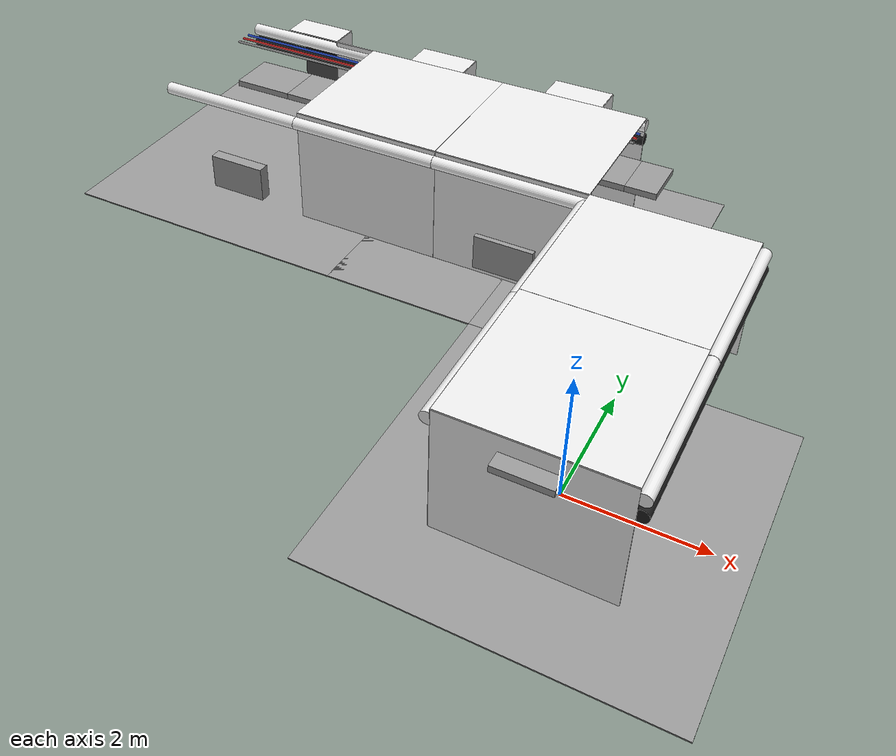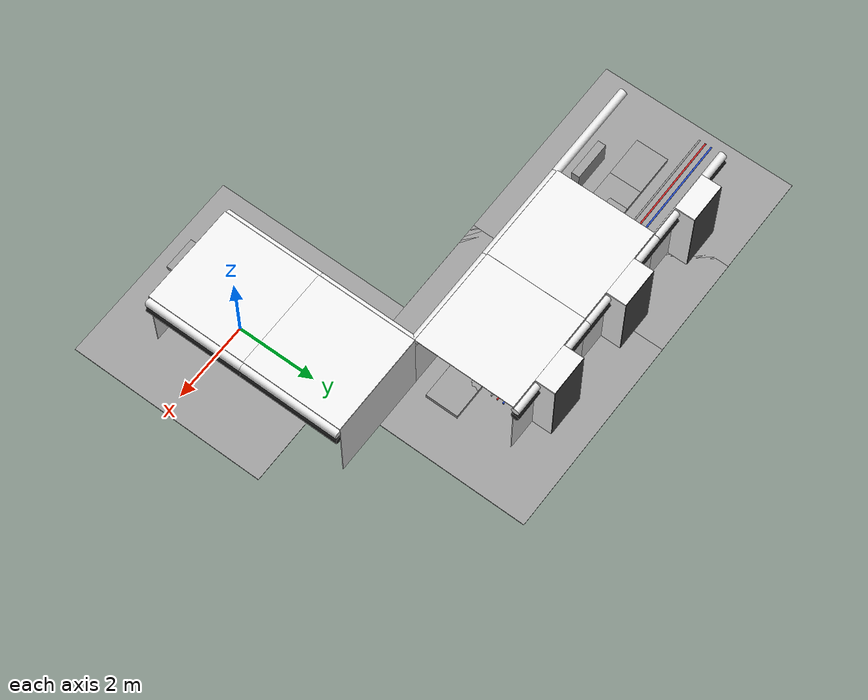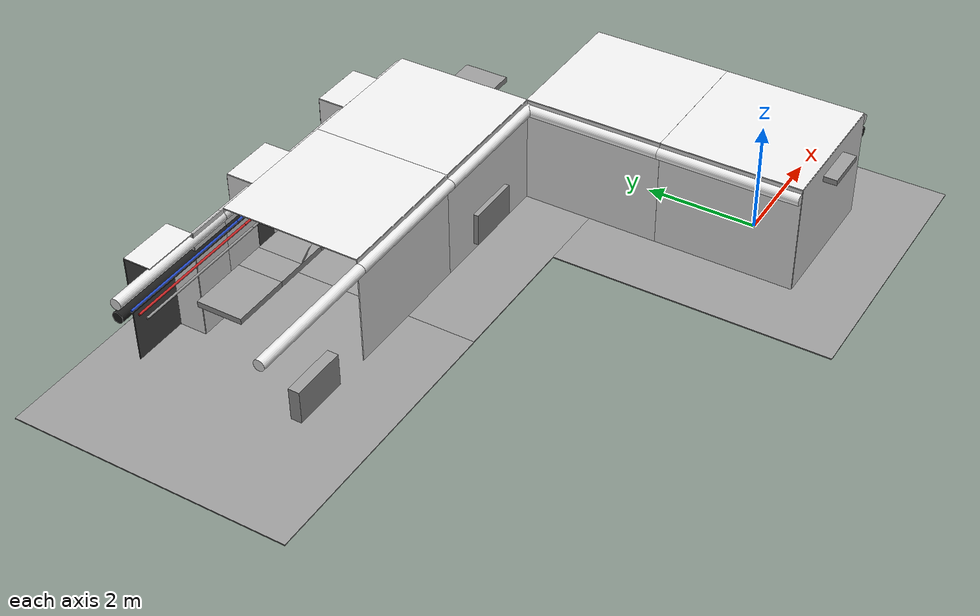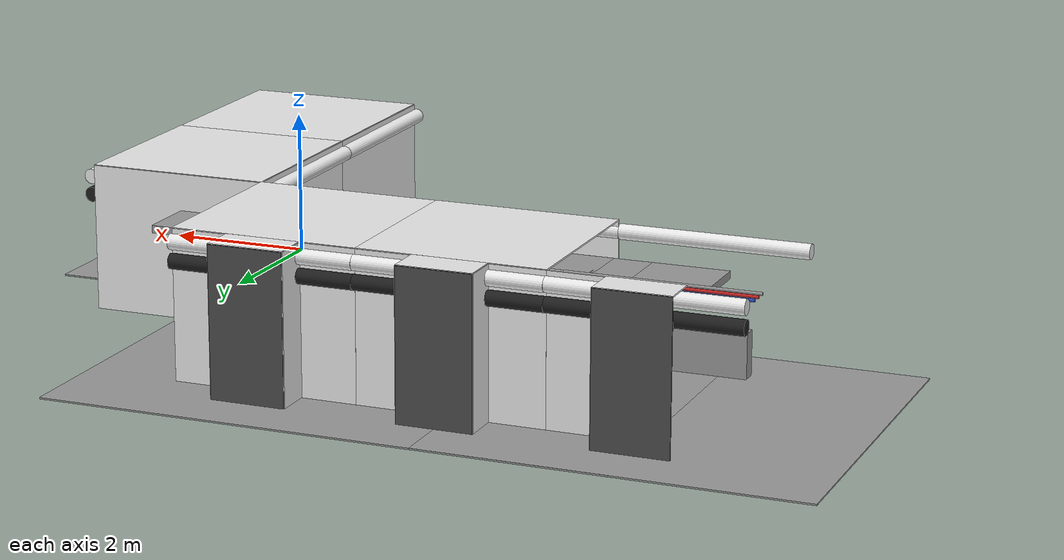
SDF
<sdf version="1.6">
 <world name="default">
  <model name="wall_back_0_0_0_0">
   <static>1</static>
   <pose>0.0 -1.25 1.0 0.0 0.0 0.0</pose>
   <link name="link">
    <collision name="collision"><geometry><box><size>2.5 0.02 2.0</size></box></geometry></collision>
    <visual name="visual">
     <material>
      <script><name>Gazebo/White</name><uri>file://media/materials/scripts/gazebo.material</uri></script>
     </material>
     <geometry><box><size>2.5 0.02 2.0</size></box></geometry>
    </visual>
   </link>
  </model>
  <model name="wall_left_0_0_0_0">
   <static>1</static>
   <pose>-1.25 0.0 1.0 0.0 0.0 1.57</pose>
   <link name="link">
    <collision name="collision"><geometry><box><size>2.5 0.02 2.0</size></box></geometry></collision>
    <visual name="visual">
     <material>
      <script><name>Gazebo/White</name><uri>file://media/materials/scripts/gazebo.material</uri></script>
     </material>
     <geometry><box><size>2.5 0.02 2.0</size></box></geometry>
    </visual>
   </link>
  </model>
  <model name="wall_top_0_0_0_0">
   <static>1</static>
   <pose>0.0 0.0 2.0 1.57 0.0 0.0</pose>
   <link name="link">
    <collision name="collision"><geometry><box><size>2.5 0.02 2.5</size></box></geometry></collision>
    <visual name="visual">
     <material>
      <script><name>Gazebo/White</name><uri>file://media/materials/scripts/gazebo.material</uri></script>
     </material>
     <geometry><box><size>2.5 0.02 2.5</size></box></geometry>
    </visual>
   </link>
  </model>
  <model name="ceiling_1_0_0_0_0">
   <pose>0.0 0.0 1.7 0.0 0.0 0.0</pose>
   <link name="link_1">
    <visual name="visual">
     <geometry><box><size>0.8 1 0.1</size></box></geometry>
     <material>
      <script><uri>file://media/materials/scripts/gazebo.material</uri><name>Gazebo/Grey</name></script>
     </material>
    </visual>
    <collision name="collision"><geometry><box><size>0.8 1 0.1</size></box></geometry></collision>
   </link>
   <static>1</static>
  </model>
  <model name="ceiling_1_0_0_1_0">
   <pose>0.0 -1.0 1.7 0.0 0.0 0.0</pose>
   <link name="link_1">
    <visual name="visual">
     <geometry><box><size>0.8 1 0.1</size></box></geometry>
     <material>
      <script><uri>file://media/materials/scripts/gazebo.material</uri><name>Gazebo/Grey</name></script>
     </material>
    </visual>
    <collision name="collision"><geometry><box><size>0.8 1 0.1</size></box></geometry></collision>
   </link>
   <static>1</static>
  </model>
  <model name="ceiling_1_0_0_2_0">
   <pose>0.0 1.0 1.7 0.0 0.0 0.0</pose>
   <link name="link_1">
    <visual name="visual">
     <geometry><box><size>0.8 1 0.1</size></box></geometry>
     <material>
      <script><uri>file://media/materials/scripts/gazebo.material</uri><name>Gazebo/Grey</name></script>
     </material>
    </visual>
    <collision name="collision"><geometry><box><size>0.8 1 0.1</size></box></geometry></collision>
   </link>
   <static>1</static>
  </model>
  <model name="white_pipe_left_0_0_0_0">
   <static>1</static>
   <pose>0.0 0.0 1.84 0.0 0.0 0.0</pose>
   <link name="link_0">
    <visual name="visual">
     <pose>-1.3 0 0 1.57 0 0</pose>
     <geometry><cylinder><radius>0.1</radius><length>2.5</length></cylinder></geometry>
     <material>
      <script><uri>file://media/materials/scripts/gazebo.material</uri><name>Gazebo/White</name></script>
     </material>
    </visual>
    <collision name="collision">
     <pose>-1.3 0 0 1.57 0 0</pose>
     <geometry><cylinder><radius>0.1</radius><length>2.5</length></cylinder></geometry>
    </collision>
   </link>
  </model>
  <model name="white_pipe_right_0_0_0_0">
   <static>1</static>
   <pose>0.0 0.0 1.84 0.0 0.0 0.0</pose>
   <link name="link_0">
    <visual name="visual">
     <pose>1.3 0 0 1.57 0 0</pose>
     <geometry><cylinder><radius>0.1</radius><length>2.5</length></cylinder></geometry>
     <material>
      <script><uri>file://media/materials/scripts/gazebo.material</uri><name>Gazebo/White</name></script>
     </material>
    </visual>
    <collision name="collision">
     <pose>1.3 0 0 1.57 0 0</pose>
     <geometry><cylinder><radius>0.1</radius><length>2.5</length></cylinder></geometry>
    </collision>
   </link>
  </model>
  <model name="black_pipe_right_0_0_0_0">
   <static>1</static>
   <pose>0.0 0.0 1.84 0.0 0.0 0.0</pose>
   <link name="link_0">
    <visual name="visual">
     <pose>1.3 0 -0.25 1.57 0 0</pose>
     <geometry><cylinder><radius>0.1</radius><length>2.5</length></cylinder></geometry>
     <material>
      <script><uri>file://media/materials/scripts/gazebo.material</uri><name>Gazebo/Black</name></script>
     </material>
    </visual>
    <collision name="collision">
     <pose>1.3 0 -0.25 1.57 0 0</pose>
     <geometry><cylinder><radius>0.1</radius><length>2.5</length></cylinder></geometry>
    </collision>
   </link>
  </model>
  <model name="grey_pipe_right_0_0_0_0">
   <static>1</static>
   <pose>0.0 0.0 1.84 0.0 0.0 0.0</pose>
   <link name="link_0">
    <visual name="visual">
     <pose>0.7 0 0 1.57 0 0</pose>
     <geometry><cylinder><radius>0.02</radius><length>2.5</length></cylinder></geometry>
     <material>
      <script><uri>file://media/materials/scripts/gazebo.material</uri><name>Gazebo/Grey</name></script>
     </material>
    </visual>
    <collision name="collision">
     <pose>0.7 0 0 1.57 0 0</pose>
     <geometry><cylinder><radius>0.02</radius><length>2.5</length></cylinder></geometry>
    </collision>
   </link>
  </model>
  <model name="red_pipe_right_0_0_0_0">
   <static>1</static>
   <pose>0.0 0.0 1.84 0.0 0.0 0.0</pose>
   <link name="link_0">
    <visual name="visual">
     <pose>0.85 0 0 1.57 0 0</pose>
     <geometry><cylinder><radius>0.02</radius><length>2.5</length></cylinder></geometry>
     <material>
      <script><uri>file://media/materials/scripts/gazebo.material</uri><name>Gazebo/Red</name></script>
     </material>
    </visual>
    <collision name="collision">
     <pose>0.85 0 0 1.57 0 0</pose>
     <geometry><cylinder><radius>0.02</radius><length>2.5</length></cylinder></geometry>
    </collision>
   </link>
  </model>
  <model name="blue_pipe_right_0_0_0_0">
   <static>1</static>
   <pose>0.0 0.0 1.84 0.0 0.0 0.0</pose>
   <link name="link_0">
    <visual name="visual">
     <pose>1 0 0 1.57 0 0</pose>
     <geometry><cylinder><radius>0.02</radius><length>2.5</length></cylinder></geometry>
     <material>
      <script><uri>file://media/materials/scripts/gazebo.material</uri><name>Gazebo/Blue</name></script>
     </material>
    </visual>
    <collision name="collision">
     <pose>1 0 0 1.57 0 0</pose>
     <geometry><cylinder><radius>0.02</radius><length>2.5</length></cylinder></geometry>
    </collision>
   </link>
  </model>
  <model name="wall_bottom_0_0_0_0">
   <static>1</static>
   <link name="link">
    <collision name="collision"><geometry><box><size>5.0 5.0 0.02</size></box></geometry></collision>
    <visual name="visual">
     <material>
      <script><name>Gazebo/Grey</name><uri>file://media/materials/scripts/gazebo.material</uri></script>
     </material>
     <geometry><box><size>5.0 5.0 0.02</size></box></geometry>
    </visual>
   </link>
  </model>
  <model name="wall_front_0_1_0_2">
   <static>1</static>
   <pose>0.0 3.75 1.0 0.0 0.0 0.0</pose>
   <link name="link">
    <collision name="collision"><geometry><box><size>2.5 0.02 2.0</size></box></geometry></collision>
    <visual name="visual">
     <material>
      <script><name>Gazebo/White</name><uri>file://media/materials/scripts/gazebo.material</uri></script>
     </material>
     <geometry><box><size>2.5 0.02 2.0</size></box></geometry>
    </visual>
   </link>
  </model>
  <model name="wall_left_0_1_0_2">
   <static>1</static>
   <pose>-1.25 2.5 1.0 0.0 0.0 1.57</pose>
   <link name="link">
    <collision name="collision"><geometry><box><size>2.5 0.02 2.0</size></box></geometry></collision>
    <visual name="visual">
     <material>
      <script><name>Gazebo/White</name><uri>file://media/materials/scripts/gazebo.material</uri></script>
     </material>
     <geometry><box><size>2.5 0.02 2.0</size></box></geometry>
    </visual>
   </link>
  </model>
  <model name="wall_top_0_1_0_2">
   <static>1</static>
   <pose>0.0 2.5 2.0 1.57 0.0 0.0</pose>
   <link name="link">
    <collision name="collision"><geometry><box><size>2.5 0.02 2.5</size></box></geometry></collision>
    <visual name="visual">
     <material>
      <script><name>Gazebo/White</name><uri>file://media/materials/scripts/gazebo.material</uri></script>
     </material>
     <geometry><box><size>2.5 0.02 2.5</size></box></geometry>
    </visual>
   </link>
  </model>
  <model name="ceiling_1_0_1_0_2">
   <pose>0.0 1.5 1.7 0.0 0.0 0.0</pose>
   <link name="link_1">
    <visual name="visual">
     <geometry><box><size>0.8 1 0.1</size></box></geometry>
     <material>
      <script><uri>file://media/materials/scripts/gazebo.material</uri><name>Gazebo/Grey</name></script>
     </material>
    </visual>
    <collision name="collision"><geometry><box><size>0.8 1 0.1</size></box></geometry></collision>
   </link>
   <static>1</static>
  </model>
  <model name="white_pipe_left_0_1_0_2">
   <static>1</static>
   <pose>0.0 2.5 1.84 0.0 0.0 0.0</pose>
   <link name="link_0">
    <visual name="visual">
     <pose>-1.3 0 0 1.57 0 0</pose>
     <geometry><cylinder><radius>0.1</radius><length>2.5</length></cylinder></geometry>
     <material>
      <script><uri>file://media/materials/scripts/gazebo.material</uri><name>Gazebo/White</name></script>
     </material>
    </visual>
    <collision name="collision">
     <pose>-1.3 0 0 1.57 0 0</pose>
     <geometry><cylinder><radius>0.1</radius><length>2.5</length></cylinder></geometry>
    </collision>
   </link>
  </model>
  <model name="white_pipe_right_0_1_0_2">
   <static>1</static>
   <pose>0.0 2.5 1.84 0.0 0.0 0.0</pose>
   <link name="link_0">
    <visual name="visual">
     <pose>1.3 0 0 1.57 0 0</pose>
     <geometry><cylinder><radius>0.1</radius><length>2.5</length></cylinder></geometry>
     <material>
      <script><uri>file://media/materials/scripts/gazebo.material</uri><name>Gazebo/White</name></script>
     </material>
    </visual>
    <collision name="collision">
     <pose>1.3 0 0 1.57 0 0</pose>
     <geometry><cylinder><radius>0.1</radius><length>2.5</length></cylinder></geometry>
    </collision>
   </link>
  </model>
  <model name="black_pipe_right_0_1_0_2">
   <static>1</static>
   <pose>0.0 2.5 1.84 0.0 0.0 0.0</pose>
   <link name="link_0">
    <visual name="visual">
     <pose>1.3 0 -0.25 1.57 0 0</pose>
     <geometry><cylinder><radius>0.1</radius><length>2.5</length></cylinder></geometry>
     <material>
      <script><uri>file://media/materials/scripts/gazebo.material</uri><name>Gazebo/Black</name></script>
     </material>
    </visual>
    <collision name="collision">
     <pose>1.3 0 -0.25 1.57 0 0</pose>
     <geometry><cylinder><radius>0.1</radius><length>2.5</length></cylinder></geometry>
    </collision>
   </link>
  </model>
  <model name="grey_pipe_right_0_1_0_2">
   <static>1</static>
   <pose>0.0 2.5 1.84 0.0 0.0 0.0</pose>
   <link name="link_0">
    <visual name="visual">
     <pose>0.7 0 0 1.57 0 0</pose>
     <geometry><cylinder><radius>0.02</radius><length>2.5</length></cylinder></geometry>
     <material>
      <script><uri>file://media/materials/scripts/gazebo.material</uri><name>Gazebo/Grey</name></script>
     </material>
    </visual>
    <collision name="collision">
     <pose>0.7 0 0 1.57 0 0</pose>
     <geometry><cylinder><radius>0.02</radius><length>2.5</length></cylinder></geometry>
    </collision>
   </link>
  </model>
  <model name="ceiling_1_0_2_2_1">
   <pose>-1.0 5.0 1.7 0.0 0.0 1.57</pose>
   <link name="link_1">
    <visual name="visual">
     <geometry><box><size>0.8 1 0.1</size></box></geometry>
     <material>
      <script><uri>file://media/materials/scripts/gazebo.material</uri><name>Gazebo/Grey</name></script>
     </material>
    </visual>
    <collision name="collision"><geometry><box><size>0.8 1 0.1</size></box></geometry></collision>
   </link>
   <static>1</static>
  </model>
  <model name="wall_left_-1_2_0_1">
   <static>1</static>
   <pose>-2.5 3.75 1.0 0.0 0.0 3.14</pose>
   <link name="link">
    <collision name="collision"><geometry><box><size>2.5 0.02 2.0</size></box></geometry></collision>
    <visual name="visual">
     <material>
      <script><name>Gazebo/White</name><uri>file://media/materials/scripts/gazebo.material</uri></script>
     </material>
     <geometry><box><size>2.5 0.02 2.0</size></box></geometry>
    </visual>
   </link>
  </model>
  <model name="wall_top_-1_2_0_1">
   <static>1</static>
   <pose>-2.5 5.0 2.0 1.57 0.0 1.57</pose>
   <link name="link">
    <collision name="collision"><geometry><box><size>2.5 0.02 2.5</size></box></geometry></collision>
    <visual name="visual">
     <material>
      <script><name>Gazebo/White</name><uri>file://media/materials/scripts/gazebo.material</uri></script>
     </material>
     <geometry><box><size>2.5 0.02 2.5</size></box></geometry>
    </visual>
   </link>
  </model>
  <model name="ceiling_1_-1_2_0_1">
   <pose>-2.5 5.0 1.7 0.0 0.0 1.57</pose>
   <link name="link_1">
    <visual name="visual">
     <geometry><box><size>0.8 1 0.1</size></box></geometry>
     <material>
      <script><uri>file://media/materials/scripts/gazebo.material</uri><name>Gazebo/Grey</name></script>
     </material>
    </visual>
    <collision name="collision"><geometry><box><size>0.8 1 0.1</size></box></geometry></collision>
   </link>
   <static>1</static>
  </model>
  <model name="ceiling_1_-1_2_1_1">
   <pose>-1.5 5.0 1.7 0.0 0.0 1.57</pose>
   <link name="link_1">
    <visual name="visual">
     <geometry><box><size>0.8 1 0.1</size></box></geometry>
     <material>
      <script><uri>file://media/materials/scripts/gazebo.material</uri><name>Gazebo/Grey</name></script>
     </material>
    </visual>
    <collision name="collision"><geometry><box><size>0.8 1 0.1</size></box></geometry></collision>
   </link>
   <static>1</static>
  </model>
  <model name="ceiling_1_-1_2_2_1">
   <pose>-3.5 5.0 1.7 0.0 0.0 1.57</pose>
   <link name="link_1">
    <visual name="visual">
     <geometry><box><size>0.8 1 0.1</size></box></geometry>
     <material>
      <script><uri>file://media/materials/scripts/gazebo.material</uri><name>Gazebo/Grey</name></script>
     </material>
    </visual>
    <collision name="collision"><geometry><box><size>0.8 1 0.1</size></box></geometry></collision>
   </link>
   <static>1</static>
  </model>
  <model name="white_pipe_left_-1_2_0_1">
   <static>1</static>
   <pose>-2.5 5.0 1.84 0.0 0.0 1.57</pose>
   <link name="link_0">
    <visual name="visual">
     <pose>-1.3 0 0 1.57 0 0</pose>
     <geometry><cylinder><radius>0.1</radius><length>2.5</length></cylinder></geometry>
     <material>
      <script><uri>file://media/materials/scripts/gazebo.material</uri><name>Gazebo/White</name></script>
     </material>
    </visual>
    <collision name="collision">
     <pose>-1.3 0 0 1.57 0 0</pose>
     <geometry><cylinder><radius>0.1</radius><length>2.5</length></cylinder></geometry>
    </collision>
   </link>
  </model>
  <model name="white_pipe_right_-1_2_0_1">
   <static>1</static>
   <pose>-2.5 5.0 1.84 0.0 0.0 1.57</pose>
   <link name="link_0">
    <visual name="visual">
     <pose>1.3 0 0 1.57 0 0</pose>
     <geometry><cylinder><radius>0.1</radius><length>2.5</length></cylinder></geometry>
     <material>
      <script><uri>file://media/materials/scripts/gazebo.material</uri><name>Gazebo/White</name></script>
     </material>
    </visual>
    <collision name="collision">
     <pose>1.3 0 0 1.57 0 0</pose>
     <geometry><cylinder><radius>0.1</radius><length>2.5</length></cylinder></geometry>
    </collision>
   </link>
  </model>
  <model name="black_pipe_right_-1_2_0_1">
   <static>1</static>
   <pose>-2.5 5.0 1.84 0.0 0.0 1.57</pose>
   <link name="link_0">
    <visual name="visual">
     <pose>1.3 0 -0.25 1.57 0 0</pose>
     <geometry><cylinder><radius>0.1</radius><length>2.5</length></cylinder></geometry>
     <material>
      <script><uri>file://media/materials/scripts/gazebo.material</uri><name>Gazebo/Black</name></script>
     </material>
    </visual>
    <collision name="collision">
     <pose>1.3 0 -0.25 1.57 0 0</pose>
     <geometry><cylinder><radius>0.1</radius><length>2.5</length></cylinder></geometry>
    </collision>
   </link>
  </model>
  <model name="grey_pipe_right_-1_2_0_1">
   <static>1</static>
   <pose>-2.5 5.0 1.84 0.0 0.0 1.57</pose>
   <link name="link_0">
    <visual name="visual">
     <pose>0.7 0 0 1.57 0 0</pose>
     <geometry><cylinder><radius>0.02</radius><length>2.5</length></cylinder></geometry>
     <material>
      <script><uri>file://media/materials/scripts/gazebo.material</uri><name>Gazebo/Grey</name></script>
     </material>
    </visual>
    <collision name="collision">
     <pose>0.7 0 0 1.57 0 0</pose>
     <geometry><cylinder><radius>0.02</radius><length>2.5</length></cylinder></geometry>
    </collision>
   </link>
  </model>
  <model name="red_pipe_right_-1_2_0_1">
   <static>1</static>
   <pose>-2.5 5.0 1.84 0.0 0.0 1.57</pose>
   <link name="link_0">
    <visual name="visual">
     <pose>0.85 0 0 1.57 0 0</pose>
     <geometry><cylinder><radius>0.02</radius><length>2.5</length></cylinder></geometry>
     <material>
      <script><uri>file://media/materials/scripts/gazebo.material</uri><name>Gazebo/Red</name></script>
     </material>
    </visual>
    <collision name="collision">
     <pose>0.85 0 0 1.57 0 0</pose>
     <geometry><cylinder><radius>0.02</radius><length>2.5</length></cylinder></geometry>
    </collision>
   </link>
  </model>
  <model name="blue_pipe_right_-1_2_0_1">
   <static>1</static>
   <pose>-2.5 5.0 1.84 0.0 0.0 1.57</pose>
   <link name="link_0">
    <visual name="visual">
     <pose>1 0 0 1.57 0 0</pose>
     <geometry><cylinder><radius>0.02</radius><length>2.5</length></cylinder></geometry>
     <material>
      <script><uri>file://media/materials/scripts/gazebo.material</uri><name>Gazebo/Blue</name></script>
     </material>
    </visual>
    <collision name="collision">
     <pose>1 0 0 1.57 0 0</pose>
     <geometry><cylinder><radius>0.02</radius><length>2.5</length></cylinder></geometry>
    </collision>
   </link>
  </model>
  <model name="wall_bottom_-1_2_0_1">
   <static>1</static>
   <pose>-2.5 5.0 0.0 0.0 0.0 1.57</pose>
   <link name="link">
    <collision name="collision"><geometry><box><size>5.0 5.0 0.02</size></box></geometry></collision>
    <visual name="visual">
     <material>
      <script><name>Gazebo/Grey</name><uri>file://media/materials/scripts/gazebo.material</uri></script>
     </material>
     <geometry><box><size>5.0 5.0 0.02</size></box></geometry>
    </visual>
   </link>
  </model>
  <model name="wall_right_front_left_-1_2_0_1">
   <static>1</static>
   <pose>-3.375 6.25 1.0 0.0 0.0 3.14</pose>
   <link name="link">
    <collision name="collision"><geometry><box><size>0.75 0.02 2.0</size></box></geometry></collision>
    <visual name="visual">
     <material>
      <script><name>Gazebo/White</name><uri>file://media/materials/scripts/gazebo.material</uri></script>
     </material>
     <geometry><box><size>0.75 0.02 2.0</size></box></geometry>
    </visual>
   </link>
  </model>
  <model name="wall_right_front_right_-1_2_0_1">
   <static>1</static>
   <pose>-1.625 6.25 1.0 0.0 0.0 3.14</pose>
   <link name="link">
    <collision name="collision"><geometry><box><size>0.75 0.02 2.0</size></box></geometry></collision>
    <visual name="visual">
     <material>
      <script><name>Gazebo/White</name><uri>file://media/materials/scripts/gazebo.material</uri></script>
     </material>
     <geometry><box><size>0.75 0.02 2.0</size></box></geometry>
    </visual>
   </link>
  </model>
  <model name="wall_right_front_up_-1_2_0_1">
   <static>1</static>
   <pose>-2.5 6.25 2.0 0.0 0.0 3.14</pose>
   <link name="link">
    <collision name="collision"><geometry><box><size>1.0 0.02 0.001</size></box></geometry></collision>
    <visual name="visual">
     <material>
      <script><name>Gazebo/White</name><uri>file://media/materials/scripts/gazebo.material</uri></script>
     </material>
     <geometry><box><size>1.0 0.02 0.001</size></box></geometry>
    </visual>
   </link>
  </model>
  <model name="wall_right_inside_back_-1_2_0_1">
   <static>1</static>
   <pose>-2.5 6.75 1.0 0.0 0.0 3.14</pose>
   <link name="link">
    <collision name="collision"><geometry><box><size>1 0.02 2</size></box></geometry></collision>
    <visual name="visual">
     <material>
      <script><name>Gazebo/DarkGrey</name><uri>file://media/materials/scripts/gazebo.material</uri></script>
     </material>
     <geometry><box><size>1 0.02 2</size></box></geometry>
    </visual>
   </link>
  </model>
  <model name="wall_right_inside_left_-1_2_0_1">
   <static>1</static>
   <pose>-3.0 6.5 1.0 0.0 0.0 1.57</pose>
   <link name="link">
    <collision name="collision"><geometry><box><size>0.5 0.02 2</size></box></geometry></collision>
    <visual name="visual">
     <material>
      <script><name>Gazebo/White</name><uri>file://media/materials/scripts/gazebo.material</uri></script>
     </material>
     <geometry><box><size>0.5 0.02 2</size></box></geometry>
    </visual>
   </link>
  </model>
  <model name="wall_right_inside_right_-1_2_0_1">
   <static>1</static>
   <pose>-2.0 6.5 1.0 0.0 0.0 1.57</pose>
   <link name="link">
    <collision name="collision"><geometry><box><size>0.5 0.02 2</size></box></geometry></collision>
    <visual name="visual">
     <material>
      <script><name>Gazebo/White</name><uri>file://media/materials/scripts/gazebo.material</uri></script>
     </material>
     <geometry><box><size>0.5 0.02 2</size></box></geometry>
    </visual>
   </link>
  </model>
  <model name="wall_right_inside_top_-1_2_0_1">
   <static>1</static>
   <pose>-2.5 6.5 2.0 1.57 0.0 3.14</pose>
   <link name="link">
    <collision name="collision"><geometry><box><size>1 0.02 0.5</size></box></geometry></collision>
    <visual name="visual">
     <material>
      <script><name>Gazebo/White</name><uri>file://media/materials/scripts/gazebo.material</uri></script>
     </material>
     <geometry><box><size>1 0.02 0.5</size></box></geometry>
    </visual>
   </link>
  </model>
  <model name="panel_-1_2_0_1">
   <static>1</static>
   <pose>-2.5 3.75 0.44 0.0 0.0 1.57</pose>
   <link name="link">
    <collision name="collision"><geometry><box><size>0.2 1 0.6</size></box></geometry></collision>
    <visual name="visual">
     <material>
      <script><name>Gazebo/Grey</name><uri>file://media/materials/scripts/gazebo.material</uri></script>
     </material>
     <geometry><box><size>0.2 1 0.6</size></box></geometry>
    </visual>
   </link>
  </model>
  <model name="wall_left_-2_2_0_1">
   <static>1</static>
   <pose>-5.0 3.75 1.0 0.0 0.0 3.14</pose>
   <link name="link">
    <collision name="collision"><geometry><box><size>2.5 0.02 2.0</size></box></geometry></collision>
    <visual name="visual">
     <material>
      <script><name>Gazebo/White</name><uri>file://media/materials/scripts/gazebo.material</uri></script>
     </material>
     <geometry><box><size>2.5 0.02 2.0</size></box></geometry>
    </visual>
   </link>
  </model>
  <model name="wall_top_-2_2_0_1">
   <static>1</static>
   <pose>-5.0 5.0 2.0 1.57 0.0 1.57</pose>
   <link name="link">
    <collision name="collision"><geometry><box><size>2.5 0.02 2.5</size></box></geometry></collision>
    <visual name="visual">
     <material>
      <script><name>Gazebo/White</name><uri>file://media/materials/scripts/gazebo.material</uri></script>
     </material>
     <geometry><box><size>2.5 0.02 2.5</size></box></geometry>
    </visual>
   </link>
  </model>
  <model name="ceiling_1_-2_2_0_1">
   <pose>-5.0 5.0 1.7 0.0 0.0 1.57</pose>
   <link name="link_1">
    <visual name="visual">
     <geometry><box><size>0.8 1 0.1</size></box></geometry>
     <material>
      <script><uri>file://media/materials/scripts/gazebo.material</uri><name>Gazebo/Grey</name></script>
     </material>
    </visual>
    <collision name="collision"><geometry><box><size>0.8 1 0.1</size></box></geometry></collision>
   </link>
   <static>1</static>
  </model>
  <model name="ceiling_1_-2_2_1_1">
   <pose>-4.0 5.0 1.7 0.0 0.0 1.57</pose>
   <link name="link_1">
    <visual name="visual">
     <geometry><box><size>0.8 1 0.1</size></box></geometry>
     <material>
      <script><uri>file://media/materials/scripts/gazebo.material</uri><name>Gazebo/Grey</name></script>
     </material>
    </visual>
    <collision name="collision"><geometry><box><size>0.8 1 0.1</size></box></geometry></collision>
   </link>
   <static>1</static>
  </model>
  <model name="ceiling_1_-2_2_2_1">
   <pose>-6.0 5.0 1.7 0.0 0.0 1.57</pose>
   <link name="link_1">
    <visual name="visual">
     <geometry><box><size>0.8 1 0.1</size></box></geometry>
     <material>
      <script><uri>file://media/materials/scripts/gazebo.material</uri><name>Gazebo/Grey</name></script>
     </material>
    </visual>
    <collision name="collision"><geometry><box><size>0.8 1 0.1</size></box></geometry></collision>
   </link>
   <static>1</static>
  </model>
  <model name="white_pipe_left_-2_2_0_1">
   <static>1</static>
   <pose>-5.0 5.0 1.84 0.0 0.0 1.57</pose>
   <link name="link_0">
    <visual name="visual">
     <pose>-1.3 0 0 1.57 0 0</pose>
     <geometry><cylinder><radius>0.1</radius><length>2.5</length></cylinder></geometry>
     <material>
      <script><uri>file://media/materials/scripts/gazebo.material</uri><name>Gazebo/White</name></script>
     </material>
    </visual>
    <collision name="collision">
     <pose>-1.3 0 0 1.57 0 0</pose>
     <geometry><cylinder><radius>0.1</radius><length>2.5</length></cylinder></geometry>
    </collision>
   </link>
  </model>
  <model name="white_pipe_right_-2_2_0_1">
   <static>1</static>
   <pose>-5.0 5.0 1.84 0.0 0.0 1.57</pose>
   <link name="link_0">
    <visual name="visual">
     <pose>1.3 0 0 1.57 0 0</pose>
     <geometry><cylinder><radius>0.1</radius><length>2.5</length></cylinder></geometry>
     <material>
      <script><uri>file://media/materials/scripts/gazebo.material</uri><name>Gazebo/White</name></script>
     </material>
    </visual>
    <collision name="collision">
     <pose>1.3 0 0 1.57 0 0</pose>
     <geometry><cylinder><radius>0.1</radius><length>2.5</length></cylinder></geometry>
    </collision>
   </link>
  </model>
  <model name="black_pipe_right_-2_2_0_1">
   <static>1</static>
   <pose>-5.0 5.0 1.84 0.0 0.0 1.57</pose>
   <link name="link_0">
    <visual name="visual">
     <pose>1.3 0 -0.25 1.57 0 0</pose>
     <geometry><cylinder><radius>0.1</radius><length>2.5</length></cylinder></geometry>
     <material>
      <script><uri>file://media/materials/scripts/gazebo.material</uri><name>Gazebo/Black</name></script>
     </material>
    </visual>
    <collision name="collision">
     <pose>1.3 0 -0.25 1.57 0 0</pose>
     <geometry><cylinder><radius>0.1</radius><length>2.5</length></cylinder></geometry>
    </collision>
   </link>
  </model>
  <model name="grey_pipe_right_-2_2_0_1">
   <static>1</static>
   <pose>-5.0 5.0 1.84 0.0 0.0 1.57</pose>
   <link name="link_0">
    <visual name="visual">
     <pose>0.7 0 0 1.57 0 0</pose>
     <geometry><cylinder><radius>0.02</radius><length>2.5</length></cylinder></geometry>
     <material>
      <script><uri>file://media/materials/scripts/gazebo.material</uri><name>Gazebo/Grey</name></script>
     </material>
    </visual>
    <collision name="collision">
     <pose>0.7 0 0 1.57 0 0</pose>
     <geometry><cylinder><radius>0.02</radius><length>2.5</length></cylinder></geometry>
    </collision>
   </link>
  </model>
  <model name="red_pipe_right_-2_2_0_1">
   <static>1</static>
   <pose>-5.0 5.0 1.84 0.0 0.0 1.57</pose>
   <link name="link_0">
    <visual name="visual">
     <pose>0.85 0 0 1.57 0 0</pose>
     <geometry><cylinder><radius>0.02</radius><length>2.5</length></cylinder></geometry>
     <material>
      <script><uri>file://media/materials/scripts/gazebo.material</uri><name>Gazebo/Red</name></script>
     </material>
    </visual>
    <collision name="collision">
     <pose>0.85 0 0 1.57 0 0</pose>
     <geometry><cylinder><radius>0.02</radius><length>2.5</length></cylinder></geometry>
    </collision>
   </link>
  </model>
  <model name="blue_pipe_right_-2_2_0_1">
   <static>1</static>
   <pose>-5.0 5.0 1.84 0.0 0.0 1.57</pose>
   <link name="link_0">
    <visual name="visual">
     <pose>1 0 0 1.57 0 0</pose>
     <geometry><cylinder><radius>0.02</radius><length>2.5</length></cylinder></geometry>
     <material>
      <script><uri>file://media/materials/scripts/gazebo.material</uri><name>Gazebo/Blue</name></script>
     </material>
    </visual>
    <collision name="collision">
     <pose>1 0 0 1.57 0 0</pose>
     <geometry><cylinder><radius>0.02</radius><length>2.5</length></cylinder></geometry>
    </collision>
   </link>
  </model>
  <model name="wall_right_front_left_-2_2_0_1">
   <static>1</static>
   <pose>-5.875 6.25 1.0 0.0 0.0 3.14</pose>
   <link name="link">
    <collision name="collision"><geometry><box><size>0.75 0.02 2.0</size></box></geometry></collision>
    <visual name="visual">
     <material>
      <script><name>Gazebo/White</name><uri>file://media/materials/scripts/gazebo.material</uri></script>
     </material>
     <geometry><box><size>0.75 0.02 2.0</size></box></geometry>
    </visual>
   </link>
  </model>
  <model name="wall_right_front_right_-2_2_0_1">
   <static>1</static>
   <pose>-4.125 6.25 1.0 0.0 0.0 3.14</pose>
   <link name="link">
    <collision name="collision"><geometry><box><size>0.75 0.02 2.0</size></box></geometry></collision>
    <visual name="visual">
     <material>
      <script><name>Gazebo/White</name><uri>file://media/materials/scripts/gazebo.material</uri></script>
     </material>
     <geometry><box><size>0.75 0.02 2.0</size></box></geometry>
    </visual>
   </link>
  </model>
  <model name="wall_right_front_up_-2_2_0_1">
   <static>1</static>
   <pose>-5.0 6.25 2.0 0.0 0.0 3.14</pose>
   <link name="link">
    <collision name="collision"><geometry><box><size>1.0 0.02 0.001</size></box></geometry></collision>
    <visual name="visual">
     <material>
      <script><name>Gazebo/White</name><uri>file://media/materials/scripts/gazebo.material</uri></script>
     </material>
     <geometry><box><size>1.0 0.02 0.001</size></box></geometry>
    </visual>
   </link>
  </model>
  <model name="wall_right_inside_back_-2_2_0_1">
   <static>1</static>
   <pose>-5.0 6.75 1.0 0.0 0.0 3.14</pose>
   <link name="link">
    <collision name="collision"><geometry><box><size>1 0.02 2</size></box></geometry></collision>
    <visual name="visual">
     <material>
      <script><name>Gazebo/DarkGrey</name><uri>file://media/materials/scripts/gazebo.material</uri></script>
     </material>
     <geometry><box><size>1 0.02 2</size></box></geometry>
    </visual>
   </link>
  </model>
  <model name="wall_right_inside_left_-2_2_0_1">
   <static>1</static>
   <pose>-5.5 6.5 1.0 0.0 0.0 1.57</pose>
   <link name="link">
    <collision name="collision"><geometry><box><size>0.5 0.02 2</size></box></geometry></collision>
    <visual name="visual">
     <material>
      <script><name>Gazebo/White</name><uri>file://media/materials/scripts/gazebo.material</uri></script>
     </material>
     <geometry><box><size>0.5 0.02 2</size></box></geometry>
    </visual>
   </link>
  </model>
  <model name="wall_right_inside_right_-2_2_0_1">
   <static>1</static>
   <pose>-4.5 6.5 1.0 0.0 0.0 1.57</pose>
   <link name="link">
    <collision name="collision"><geometry><box><size>0.5 0.02 2</size></box></geometry></collision>
    <visual name="visual">
     <material>
      <script><name>Gazebo/White</name><uri>file://media/materials/scripts/gazebo.material</uri></script>
     </material>
     <geometry><box><size>0.5 0.02 2</size></box></geometry>
    </visual>
   </link>
  </model>
  <model name="wall_right_inside_top_-2_2_0_1">
   <static>1</static>
   <pose>-5.0 6.5 2.0 1.57 0.0 3.14</pose>
   <link name="link">
    <collision name="collision"><geometry><box><size>1 0.02 0.5</size></box></geometry></collision>
    <visual name="visual">
     <material>
      <script><name>Gazebo/White</name><uri>file://media/materials/scripts/gazebo.material</uri></script>
     </material>
     <geometry><box><size>1 0.02 0.5</size></box></geometry>
    </visual>
   </link>
  </model>
  <model name="wall_bottom_-2_2_0_1">
   <static>1</static>
   <pose>-5.0 5.0 0.0 0.0 0.0 1.57</pose>
   <link name="link">
    <collision name="collision"><geometry><box><size>5.0 5.0 0.02</size></box></geometry></collision>
    <visual name="visual">
     <material>
      <script><name>Gazebo/Grey</name><uri>file://media/materials/scripts/gazebo.material</uri></script>
     </material>
     <geometry><box><size>5.0 5.0 0.02</size></box></geometry>
    </visual>
   </link>
  </model>
  <model name="ceiling_1_-3_2_0_1">
   <pose>-7.5 5.0 1.7 0.0 0.0 1.57</pose>
   <link name="link_1">
    <visual name="visual">
     <geometry><box><size>0.8 1 0.1</size></box></geometry>
     <material>
      <script><uri>file://media/materials/scripts/gazebo.material</uri><name>Gazebo/Grey</name></script>
     </material>
    </visual>
    <collision name="collision"><geometry><box><size>0.8 1 0.1</size></box></geometry></collision>
   </link>
   <static>1</static>
  </model>
  <model name="ceiling_1_-3_2_1_1">
   <pose>-6.5 5.0 1.7 0.0 0.0 1.57</pose>
   <link name="link_1">
    <visual name="visual">
     <geometry><box><size>0.8 1 0.1</size></box></geometry>
     <material>
      <script><uri>file://media/materials/scripts/gazebo.material</uri><name>Gazebo/Grey</name></script>
     </material>
    </visual>
    <collision name="collision"><geometry><box><size>0.8 1 0.1</size></box></geometry></collision>
   </link>
   <static>1</static>
  </model>
  <model name="white_pipe_left_-3_2_0_1">
   <static>1</static>
   <pose>-7.5 5.0 1.84 0.0 0.0 1.57</pose>
   <link name="link_0">
    <visual name="visual">
     <pose>-1.3 0 0 1.57 0 0</pose>
     <geometry><cylinder><radius>0.1</radius><length>2.5</length></cylinder></geometry>
     <material>
      <script><uri>file://media/materials/scripts/gazebo.material</uri><name>Gazebo/White</name></script>
     </material>
    </visual>
    <collision name="collision">
     <pose>-1.3 0 0 1.57 0 0</pose>
     <geometry><cylinder><radius>0.1</radius><length>2.5</length></cylinder></geometry>
    </collision>
   </link>
  </model>
  <model name="white_pipe_right_-3_2_0_1">
   <static>1</static>
   <pose>-7.5 5.0 1.84 0.0 0.0 1.57</pose>
   <link name="link_0">
    <visual name="visual">
     <pose>1.3 0 0 1.57 0 0</pose>
     <geometry><cylinder><radius>0.1</radius><length>2.5</length></cylinder></geometry>
     <material>
      <script><uri>file://media/materials/scripts/gazebo.material</uri><name>Gazebo/White</name></script>
     </material>
    </visual>
    <collision name="collision">
     <pose>1.3 0 0 1.57 0 0</pose>
     <geometry><cylinder><radius>0.1</radius><length>2.5</length></cylinder></geometry>
    </collision>
   </link>
  </model>
  <model name="black_pipe_right_-3_2_0_1">
   <static>1</static>
   <pose>-7.5 5.0 1.84 0.0 0.0 1.57</pose>
   <link name="link_0">
    <visual name="visual">
     <pose>1.3 0 -0.25 1.57 0 0</pose>
     <geometry><cylinder><radius>0.1</radius><length>2.5</length></cylinder></geometry>
     <material>
      <script><uri>file://media/materials/scripts/gazebo.material</uri><name>Gazebo/Black</name></script>
     </material>
    </visual>
    <collision name="collision">
     <pose>1.3 0 -0.25 1.57 0 0</pose>
     <geometry><cylinder><radius>0.1</radius><length>2.5</length></cylinder></geometry>
    </collision>
   </link>
  </model>
  <model name="grey_pipe_right_-3_2_0_1">
   <static>1</static>
   <pose>-7.5 5.0 1.84 0.0 0.0 1.57</pose>
   <link name="link_0">
    <visual name="visual">
     <pose>0.7 0 0 1.57 0 0</pose>
     <geometry><cylinder><radius>0.02</radius><length>2.5</length></cylinder></geometry>
     <material>
      <script><uri>file://media/materials/scripts/gazebo.material</uri><name>Gazebo/Grey</name></script>
     </material>
    </visual>
    <collision name="collision">
     <pose>0.7 0 0 1.57 0 0</pose>
     <geometry><cylinder><radius>0.02</radius><length>2.5</length></cylinder></geometry>
    </collision>
   </link>
  </model>
  <model name="red_pipe_right_-3_2_0_1">
   <static>1</static>
   <pose>-7.5 5.0 1.84 0.0 0.0 1.57</pose>
   <link name="link_0">
    <visual name="visual">
     <pose>0.85 0 0 1.57 0 0</pose>
     <geometry><cylinder><radius>0.02</radius><length>2.5</length></cylinder></geometry>
     <material>
      <script><uri>file://media/materials/scripts/gazebo.material</uri><name>Gazebo/Red</name></script>
     </material>
    </visual>
    <collision name="collision">
     <pose>0.85 0 0 1.57 0 0</pose>
     <geometry><cylinder><radius>0.02</radius><length>2.5</length></cylinder></geometry>
    </collision>
   </link>
  </model>
  <model name="blue_pipe_right_-3_2_0_1">
   <static>1</static>
   <pose>-7.5 5.0 1.84 0.0 0.0 1.57</pose>
   <link name="link_0">
    <visual name="visual">
     <pose>1 0 0 1.57 0 0</pose>
     <geometry><cylinder><radius>0.02</radius><length>2.5</length></cylinder></geometry>
     <material>
      <script><uri>file://media/materials/scripts/gazebo.material</uri><name>Gazebo/Blue</name></script>
     </material>
    </visual>
    <collision name="collision">
     <pose>1 0 0 1.57 0 0</pose>
     <geometry><cylinder><radius>0.02</radius><length>2.5</length></cylinder></geometry>
    </collision>
   </link>
  </model>
  <model name="wall_bottom_-3_2_0_1">
   <static>1</static>
   <pose>-7.5 5.0 0.0 0.0 0.0 1.57</pose>
   <link name="link">
    <collision name="collision"><geometry><box><size>5.0 5.0 0.02</size></box></geometry></collision>
    <visual name="visual">
     <material>
      <script><name>Gazebo/Grey</name><uri>file://media/materials/scripts/gazebo.material</uri></script>
     </material>
     <geometry><box><size>5.0 5.0 0.02</size></box></geometry>
    </visual>
   </link>
  </model>
  <model name="wall_right_front_right_-3_2_0_1">
   <static>1</static>
   <pose>-6.625 6.25 1.0 0.0 0.0 3.14</pose>
   <link name="link">
    <collision name="collision"><geometry><box><size>0.75 0.02 2.0</size></box></geometry></collision>
    <visual name="visual">
     <material>
      <script><name>Gazebo/White</name><uri>file://media/materials/scripts/gazebo.material</uri></script>
     </material>
     <geometry><box><size>0.75 0.02 2.0</size></box></geometry>
    </visual>
   </link>
  </model>
  <model name="wall_right_front_up_-3_2_0_1">
   <static>1</static>
   <pose>-7.5 6.25 2.0 0.0 0.0 3.14</pose>
   <link name="link">
    <collision name="collision"><geometry><box><size>1.0 0.02 0.001</size></box></geometry></collision>
    <visual name="visual">
     <material>
      <script><name>Gazebo/White</name><uri>file://media/materials/scripts/gazebo.material</uri></script>
     </material>
     <geometry><box><size>1.0 0.02 0.001</size></box></geometry>
    </visual>
   </link>
  </model>
  <model name="wall_right_inside_back_-3_2_0_1">
   <static>1</static>
   <pose>-7.5 6.75 1.0 0.0 0.0 3.14</pose>
   <link name="link">
    <collision name="collision"><geometry><box><size>1 0.02 2</size></box></geometry></collision>
    <visual name="visual">
     <material>
      <script><name>Gazebo/DarkGrey</name><uri>file://media/materials/scripts/gazebo.material</uri></script>
     </material>
     <geometry><box><size>1 0.02 2</size></box></geometry>
    </visual>
   </link>
  </model>
  <model name="wall_right_inside_right_-3_2_0_1">
   <static>1</static>
   <pose>-7.0 6.5 1.0 0.0 0.0 1.57</pose>
   <link name="link">
    <collision name="collision"><geometry><box><size>0.5 0.02 2</size></box></geometry></collision>
    <visual name="visual">
     <material>
      <script><name>Gazebo/White</name><uri>file://media/materials/scripts/gazebo.material</uri></script>
     </material>
     <geometry><box><size>0.5 0.02 2</size></box></geometry>
    </visual>
   </link>
  </model>
  <model name="wall_right_inside_top_-3_2_0_1">
   <static>1</static>
   <pose>-7.5 6.5 2.0 1.57 0.0 3.14</pose>
   <link name="link">
    <collision name="collision"><geometry><box><size>1 0.02 0.5</size></box></geometry></collision>
    <visual name="visual">
     <material>
      <script><name>Gazebo/White</name><uri>file://media/materials/scripts/gazebo.material</uri></script>
     </material>
     <geometry><box><size>1 0.02 0.5</size></box></geometry>
    </visual>
   </link>
  </model>
  <model name="panel_-3_2_0_1">
   <static>1</static>
   <pose>-7.5 3.75 0.44 0.0 0.0 1.57</pose>
   <link name="link">
    <collision name="collision"><geometry><box><size>0.2 1 0.6</size></box></geometry></collision>
    <visual name="visual">
     <material>
      <script><name>Gazebo/Grey</name><uri>file://media/materials/scripts/gazebo.material</uri></script>
     </material>
     <geometry><box><size>0.2 1 0.6</size></box></geometry>
    </visual>
   </link>
  </model>
 </world>
</sdf>
